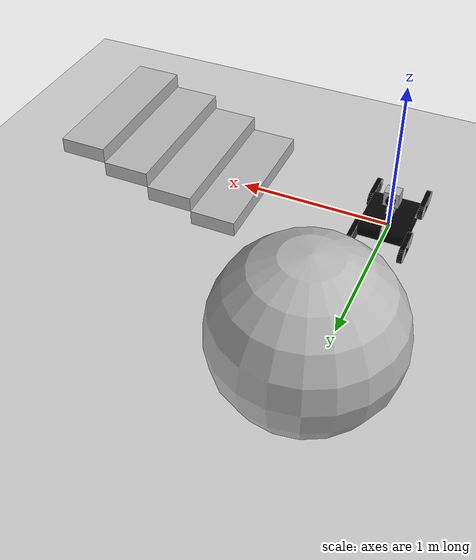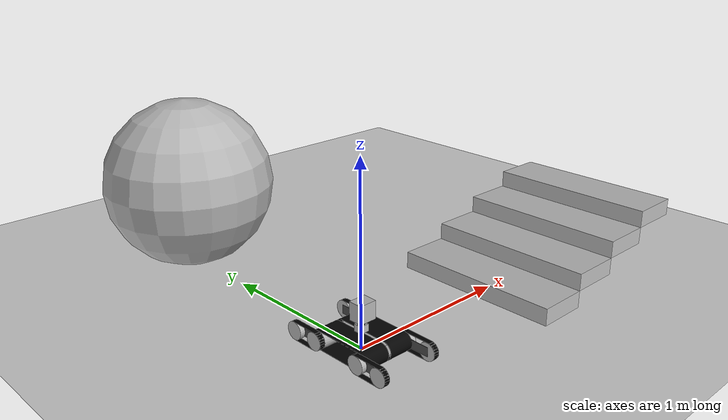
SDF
<?xml version="1.0"?>
<sdf version="1.6">
  <world name="default">
    <gui fullscreen='0'>
      <!-- KEYPUBLISHER SEE: https://github.com/osrf/car_demo/issues/25 -->
      <plugin name='keyboard' filename='libKeyboardGUIPlugin.so'/>
      <camera name='user_default'>
        <pose frame=''>0.602948 -0.001582 0.357965 -0 0.6 -3.141</pose>
        <view_controller>orbit</view_controller>
        <projection_type>perspective</projection_type>
      </camera>
    </gui>

    <include>
      <uri>model://ground_plane</uri>
    </include>

    <include>
      <uri>model://sun</uri>
    </include>

    <include>
      <uri>model://crawler_robot</uri>
      <name>crawler_robot</name>
      <pose>0 0 0 0 0 3.14</pose>
    </include>

    <model name="stairs">
      <pose>1 0 0 0 0 0</pose>
      <static>true</static>
      <link name="step1">
        <pose>0 0 0.05 0 0 0</pose>
        <collision name="collision">
          <geometry>
            <box> <size>0.3 1.0 0.1</size> </box>
          </geometry>
        </collision>
        <visual name="visual">
          <geometry>
            <box> <size>0.3 1.0 0.1</size> </box>
          </geometry>
        </visual>
      </link>
      <link name="step2">
        <pose>0.3 0 0.15 0 0 0</pose>
        <collision name="collision">
          <geometry>
            <box> <size>0.3 1.0 0.1</size> </box>
          </geometry>
        </collision>
        <visual name="visual">
          <geometry>
            <box> <size>0.3 1.0 0.1</size> </box>
          </geometry>
        </visual>
      </link>
      <link name="step3">
        <pose>0.6 0 0.25 0 0 0</pose>
        <collision name="collision">
          <geometry>
            <box> <size>0.3 1.0 0.1</size> </box>
          </geometry>
        </collision>
        <visual name="visual">
          <geometry>
            <box> <size>0.3 1.0 0.1</size> </box>
          </geometry>
        </visual>
      </link>
      <link name="step4">
        <pose>0.9 0 0.35 0 0 0</pose>
        <collision name="collision">
          <geometry>
            <box> <size>0.3 1.0 0.1</size> </box>
          </geometry>
        </collision>
        <visual name="visual">
          <geometry>
            <box> <size>0.3 1.0 0.1</size> </box>
          </geometry>
        </visual>
      </link>
    </model>

    <model name="sphere">
      <pose>0 1.5 0.5 0 0 0</pose>
      <link name="link">
        <collision name="collision">
          <geometry>
            <sphere>
              <radius>0.5</radius>
            </sphere>
          </geometry>
        </collision>
        <visual name="visual">
          <geometry>
            <sphere>
              <radius>0.5</radius>
            </sphere>
          </geometry>
          <material>
            <script>Gazebo/WoodPallet</script>
          </material>
        </visual>
        <audio_source>
          <uri>file://media/audio/cheer.wav</uri>
          <pitch>2.0</pitch>
          <gain>1.0</gain>
          <loop>false</loop>
          <contact>
            <collision>collision</collision>
          </contact>
        </audio_source>
      </link>
    </model>
  </world>
</sdf>

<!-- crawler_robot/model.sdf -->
<sdf version='1.5'>
  <model name="crawler_robot">
    <static>false</static>
    <self_collide>0</self_collide>
<!--__________________body_____________________-->
    <link name='base_link'>
      <pose>0 0 .05 0 0 0</pose>
      <inertial>
        <mass>20</mass>
        <inertia>
          <ixx>1.696e-01</ixx>
          <iyy>2.176e-02</iyy>
          <izz>1.7984e-01</izz>
        </inertia>
      </inertial>

      <collision name='collision'>
        <geometry>
          <box>
            <size>.1 .32 .06</size>
          </box>
        </geometry>
      </collision>

      <visual name='visual'>
        <geometry>
          <box>
            <size>.1 .32 .06</size>
          </box>
        </geometry>
      </visual>
<!--__________________crawler_____________________-->
      <visual name="crawler_visual_R">
        <pose>-0.08 -0.00075 0 0 0 1.570796327</pose>
        <geometry>
          <mesh>
            <uri>model://crawler_robot/dae/crawler.dae</uri>
          </mesh>
        </geometry>
      </visual>
      <visual name="crawler_visual_L">
        <pose>0.08 -0.00075 0 0 0 1.570796327</pose>
        <geometry>
          <mesh>
            <uri>model://crawler_robot/dae/crawler.dae</uri>
          </mesh>
        </geometry>
      </visual>
<!-- IMU Sensor -->
      <sensor name="imu_sensor" type="imu">
        <pose>0 0 0 0 0 0</pose>
        <always_on>1</always_on>
        <update_rate>100</update_rate>
        <imu>
        </imu>
      </sensor>
<!-- GPS sensor copied from gazebo-5.0.1/test/worlds/gps_test.world -->
      <sensor name="gps" type="gps">
        <pose>0 0 0 0 0 0</pose>
        <update_rate>10.0</update_rate>
        <always_on>true</always_on>
        <gps>
          <position_sensing>
            <horizontal>
              <noise type="gaussian_quantized">
                <mean>0</mean>
                <stddev>1</stddev>
                <bias_mean>3</bias_mean>
                <bias_stddev>1</bias_stddev>
                <precision>0.5</precision>
              </noise>
            </horizontal>
            <vertical>
              <noise type="gaussian_quantized">
                <mean>0</mean>
                <stddev>1</stddev>
                <bias_mean>3</bias_mean>
                <bias_stddev>1</bias_stddev>
                <precision>1.0</precision>
              </noise>
            </vertical>
          </position_sensing>
          <velocity_sensing>
            <horizontal>
              <noise type="gaussian_quantized">
                <mean>0</mean>
                <stddev>0.1</stddev>
                <bias_mean>0.1</bias_mean>
                <bias_stddev>0.1</bias_stddev>
                <precision>0.1</precision>
              </noise>
            </horizontal>
            <vertical>
              <noise type="gaussian_quantized">
                <mean>0</mean>
                <stddev>0.2</stddev>
                <bias_mean>0.2</bias_mean>
                <bias_stddev>0.2</bias_stddev>
                <precision>0.2</precision>
              </noise>
            </vertical>
          </velocity_sensing>
        </gps>
      </sensor>
    </link>

<!-- Camera (It's hight is 100mm) -->
    <include>
      <name>camera</name>
      <pose>0 0 0.22 0 0 -1.57</pose>
      <uri>model://camera_gazebo</uri>
    </include>

    <joint name="camera_joint" type="revolute">
      <parent>base_link</parent>
      <child>camera::camera_link</child>
      <pose>0 0 0 0 0 0</pose>
      <axis>
        <xyz>0 0 1</xyz>
        <limit>
          <lower>0</lower>
          <upper>0</upper>
        </limit>
      </axis>
    </joint>

<!-- Hokuyo (hight is 70mm) -->
    <include>
      <name>hokuyo</name>
      <pose>0 0 0.135 0 0 -1.57</pose>
      <uri>model://hokuyo_gazebo</uri>
    </include>

    <joint name="hokuyo_joint" type="revolute">
      <parent>base_link</parent>
      <child>hokuyo::hokuyo_link</child>
      <pose>0 0 0 0 0 0</pose>
      <axis>
        <xyz>0 0 1</xyz>
        <limit>
          <lower>0</lower>
          <upper>0</upper>
        </limit>
      </axis>
    </joint>

<!--__________________right_crawler___________________-->
    <link name="right_rear_wheel">
      <pose>-0.1 0.15 0.05 0 1.570796327 0</pose>
      <inertial>
        <mass>1.0</mass>
        <inertia>
          <ixx>1.3744467859e-03</ixx>
          <ixy>0</ixy>
          <ixz>0</ixz>
          <iyy>1.3744467859e-03</iyy>
          <iyz>0</iyz>
          <izz>11.780972451e-04</izz>
        </inertia>
      </inertial>
      <collision name="collision">
        <geometry>
          <cylinder>
            <radius>.05</radius>
            <length>.1</length>
          </cylinder>
        </geometry>
        <surface>
          <friction>
            <ode>
              <mu>.8</mu>
              <mu2>.8</mu2>
            </ode>
          </friction>
        </surface>
      </collision>
      <visual name="visual">
        <geometry>
          <cylinder>
            <radius>.05</radius>
            <length>.1</length>
          </cylinder>
        </geometry>
      </visual>
    </link>

    <link name="right_front_wheel">
    <pose>-0.1 -0.15 0.05 0 1.570796327 0</pose>
      <inertial>
        <mass>1.0</mass>
        <inertia>
          <ixx>1.3744467859e-03</ixx>
          <ixy>0</ixy>
          <ixz>0</ixz>
          <iyy>1.3744467859e-03</iyy>
          <iyz>0</iyz>
          <izz>11.780972451e-04</izz>
        </inertia>
      </inertial>
      <collision name="collision">
        <geometry>
          <cylinder>
            <radius>.05</radius>
            <length>.1</length>
          </cylinder>
        </geometry>
        <surface>
          <friction>
            <ode>
              <mu>.8</mu>
              <mu2>.8</mu2>
            </ode>
          </friction>
        </surface>
      </collision>
      <visual name="visual">
        <geometry>
          <cylinder>
            <radius>.05</radius>
            <length>.1</length>
          </cylinder>
        </geometry>
      </visual>
    </link>

    <link name="right_center_wheel_1">
      <pose>-0.1 0.05 0.05 0 1.570796327 0</pose>
      <inertial>
        <mass>1.0</mass>
        <inertia>
          <ixx>7.5267323992e-04</ixx>
          <ixy>0</ixy>
          <ixz>0</ixz>
          <iyy>7.5267323992e-04</iyy>
          <iyz>0</iyz>
          <izz>11.2900985988e-04</izz>
        </inertia>
      </inertial>
      <collision name="collision">
        <geometry>
          <cylinder>
            <radius>.05</radius>
            <length>.05</length>
          </cylinder>
        </geometry>
        <surface>
          <friction>
            <ode>
              <mu>.8</mu>
              <mu2>.8</mu2>
            </ode>
          </friction>
        </surface>
      </collision>
    </link>

    <link name="right_center_wheel_2">
      <pose>-0.1 -0.0 0.049 0 1.570796327 0</pose>
      <inertial>
        <mass>1.0</mass>
        <inertia>
          <ixx>7.5267323992e-04</ixx>
          <ixy>0</ixy>
          <ixz>0</ixz>
          <iyy>7.5267323992e-04</iyy>
          <iyz>0</iyz>
          <izz>11.2900985988e-04</izz>
        </inertia>
      </inertial>
      <collision name="collision">
        <geometry>
          <cylinder>
            <radius>.05</radius>
            <length>.05</length>
          </cylinder>
        </geometry>
        <surface>
          <friction>
            <ode>
              <mu>.8</mu>
              <mu2>.8</mu2>
            </ode>
          </friction>
        </surface>
      </collision>
    </link>

    <link name="right_center_wheel_3">
      <pose>-0.1 -0.05 0.05 0 1.570796327 0</pose>
      <inertial>
        <mass>1.0</mass>
        <inertia>
          <ixx>7.5267323992e-04</ixx>
          <ixy>0</ixy>
          <ixz>0</ixz>
          <iyy>7.5267323992e-04</iyy>
          <iyz>0</iyz>
          <izz>11.2900985988e-04</izz>
        </inertia>
      </inertial>
      <collision name="collision">
        <geometry>
          <cylinder>
            <radius>.05</radius>
            <length>.05</length>
          </cylinder>
        </geometry>
        <surface>
          <friction>
            <ode>
              <mu>.8</mu>
              <mu2>.8</mu2>
            </ode>
          </friction>
        </surface>
      </collision>
    </link>

    <link name="right_sub_wheel_2">
      <pose>-0.1 0.1 0.05 0 1.570796327 0</pose>
      <inertial>
        <mass>1.0</mass>
        <inertia>
          <ixx>1.3744467859e-03</ixx>
          <ixy>0</ixy>
          <ixz>0</ixz>
          <iyy>1.3744467859e-03</iyy>
          <iyz>0</iyz>
          <izz>11.780972451e-04</izz>
        </inertia>
      </inertial>
      <collision name="collision">
        <geometry>
          <cylinder>
            <radius>.05</radius>
            <length>.1</length>
          </cylinder>
        </geometry>
        <surface>
          <friction>
            <ode>
              <mu>.8</mu>
              <mu2>.8</mu2>
            </ode>
          </friction>
        </surface>
      </collision>
      <self_collide>0</self_collide>
    </link>

    <link name="right_sub_wheel_3">
      <pose>-0.1 -0.1 0.05 0 1.570796327 0</pose>
      <inertial>
        <mass>1.0</mass>
        <inertia>
          <ixx>1.3744467859e-03</ixx>
          <ixy>0</ixy>
          <ixz>0</ixz>
          <iyy>1.3744467859e-03</iyy>
          <iyz>0</iyz>
          <izz>11.780972451e-04</izz>
        </inertia>
      </inertial>
      <collision name="collision">
        <geometry>
          <cylinder>
            <radius>.05</radius>
            <length>.1</length>
          </cylinder>
        </geometry>
        <surface>
          <friction>
            <ode>
              <mu>.8</mu>
              <mu2>.8</mu2>
            </ode>
          </friction>
        </surface>
      </collision>
      <self_collide>0</self_collide>
    </link>
<!--__________________/right_crawler___________________-->

<!--__________________left_crawler___________________-->
    <link name="left_rear_wheel">
      <pose>0.1 0.15 0.05 0 1.570796327 0</pose>
      <inertial>
        <mass>1.0</mass>
        <inertia>
          <ixx>1.3744467859e-03</ixx>
          <ixy>0</ixy>
          <ixz>0</ixz>
          <iyy>1.3744467859e-03</iyy>
          <iyz>0</iyz>
          <izz>11.780972451e-04</izz>
        </inertia>
      </inertial>
      <collision name="collision">
        <geometry>
          <cylinder>
            <radius>.05</radius>
            <length>.1</length>
          </cylinder>
        </geometry>
        <surface>
          <friction>
            <ode>
              <mu>.8</mu>
              <mu2>.8</mu2>
            </ode>
          </friction>
        </surface>
      </collision>
      <visual name="visual">
        <geometry>
          <cylinder>
            <radius>.05</radius>
            <length>.1</length>
          </cylinder>
        </geometry>
      </visual>
    </link>

    <link name="left_front_wheel">
      <pose>0.1 -0.15 0.05 0 1.570796327 0</pose>
      <inertial>
        <mass>1.0</mass>
        <inertia>
          <ixx>1.3744467859e-03</ixx>
          <ixy>0</ixy>
          <ixz>0</ixz>
          <iyy>1.3744467859e-03</iyy>
          <iyz>0</iyz>
          <izz>11.780972451e-04</izz>
        </inertia>
      </inertial>
      <collision name="collision">
        <geometry>
          <cylinder>
            <radius>.05</radius>
            <length>.1</length>
          </cylinder>
        </geometry>
        <surface>
          <friction>
            <ode>
              <mu>.8</mu>
              <mu2>.8</mu2>
            </ode>
          </friction>
        </surface>
      </collision>
      <visual name="visual">
        <geometry>
          <cylinder>
            <radius>.05</radius>
            <length>.1</length>
          </cylinder>
        </geometry>
      </visual>
    </link>

    <link name="left_center_wheel_1">
      <pose>0.1 0.05 0.05 0 1.570796327 0</pose>
      <inertial>
        <mass>1.0</mass>
        <inertia>
          <ixx>7.5267323992e-04</ixx>
          <ixy>0</ixy>
          <ixz>0</ixz>
          <iyy>7.5267323992e-04</iyy>
          <iyz>0</iyz>
          <izz>11.2900985988e-04</izz>
        </inertia>
      </inertial>
      <collision name="collision">
        <geometry>
          <cylinder>
            <radius>.05</radius>
            <length>.05</length>
          </cylinder>
        </geometry>
        <surface>
          <friction>
            <ode>
              <mu>.8</mu>
              <mu2>.8</mu2>
            </ode>
          </friction>
        </surface>
      </collision>
    </link>

    <link name="left_center_wheel_2">
      <pose>0.1 -0.0 0.049 0 1.570796327 0</pose>
      <inertial>
        <mass>1.0</mass>
        <inertia>
          <ixx>7.5267323992e-04</ixx>
          <ixy>0</ixy>
          <ixz>0</ixz>
          <iyy>7.5267323992e-04</iyy>
          <iyz>0</iyz>
          <izz>11.2900985988e-04</izz>
        </inertia>
      </inertial>
      <collision name="collision">
        <geometry>
          <cylinder>
            <radius>.05</radius>
            <length>.05</length>
          </cylinder>
        </geometry>
        <surface>
          <friction>
            <ode>
              <mu>.8</mu>
              <mu2>.8</mu2>
            </ode>
          </friction>
        </surface>
      </collision>
    </link>

    <link name="left_center_wheel_3">
      <pose>0.1 -0.05 0.05 0 1.570796327 0</pose>
      <inertial>
        <mass>1.0</mass>
        <inertia>
          <ixx>7.5267323992e-04</ixx>
          <ixy>0</ixy>
          <ixz>0</ixz>
          <iyy>7.5267323992e-04</iyy>
          <iyz>0</iyz>
          <izz>11.2900985988e-04</izz>
        </inertia>
      </inertial>
      <collision name="collision">
        <geometry>
          <cylinder>
            <radius>.05</radius>
            <length>.05</length>
          </cylinder>
        </geometry>
        <surface>
          <friction>
            <ode>
              <mu>.8</mu>
              <mu2>.8</mu2>
            </ode>
          </friction>
        </surface>
      </collision>
    </link>

    <link name="left_sub_wheel_2">
      <pose>0.1 0.1 0.05 0 1.570796327 0</pose>
      <inertial>
        <mass>1.0</mass>
        <inertia>
          <ixx>1.3744467859e-03</ixx>
          <ixy>0</ixy>
          <ixz>0</ixz>
          <iyy>1.3744467859e-03</iyy>
          <iyz>0</iyz>
          <izz>11.780972451e-04</izz>
        </inertia>
      </inertial>
      <collision name="collision">
        <geometry>
          <cylinder>
            <radius>.05</radius>
            <length>.1</length>
          </cylinder>
        </geometry>
        <surface>
          <friction>
            <ode>
              <mu>.8</mu>
              <mu2>.8</mu2>
            </ode>
          </friction>
        </surface>
      </collision>
    </link>

    <link name="left_sub_wheel_3">
      <pose>0.1 -0.1 0.05 0 1.570796327 0</pose>
      <inertial>
        <mass>1.0</mass>
        <inertia>
          <ixx>1.3744467859e-03</ixx>
          <ixy>0</ixy>
          <ixz>0</ixz>
          <iyy>1.3744467859e-03</iyy>
          <iyz>0</iyz>
          <izz>11.780972451e-04</izz>
        </inertia>
      </inertial>
      <collision name="collision">
        <geometry>
          <cylinder>
            <radius>.05</radius>
            <length>.1</length>
          </cylinder>
        </geometry>
        <surface>
          <friction>
            <ode>
              <mu>.8</mu>
              <mu2>.8</mu2>
            </ode>
          </friction>
        </surface>
      </collision>
    </link>
<!--__________________/left_crawler___________________-->

<!--__________________right_rear_arm__________________-->

    <link name="right_rear_arm_link">
      <pose>-0.151 0.225 0.05 0 0 0</pose>
      <inertial>
        <pose>-0.015 0 0 1.57 0 1.57</pose>
        <mass>1.0</mass>
        <inertia>
          <ixx>6.8125e-4</ixx>
          <ixy>0</ixy>
          <ixz>0</ixz>
          <iyy>3.96253e-3</iyy>
          <iyz>0</iyz>
          <izz>4.53125e-3</izz>
        </inertia>
      </inertial>
      <visual name="visual">
        <geometry>
          <box>
            <size>.002 .16 .05</size>
          </box>
        </geometry>
        <material>
          <ambient>0.7 0.7 0.7 1</ambient>
          <diffuse>0.3 0.3 0.3 1</diffuse>
          <specular>0.1 0.1 0.1 1</specular>
          <emissive>0 0 0 0</emissive>
        </material>
      </visual>
      <visual name="crawler_visual">
        <pose>-0.015 0 -0.05 0 0 1.57</pose>
        <geometry>
          <mesh>
            <uri>model://crawler_robot/dae/arm_crawler_2.dae</uri>
          </mesh>
        </geometry>
      </visual>
    </link>

    <link name="right_rear_arm_wheel_1">
      <pose>-0.166 0.15 0.05 0 1.570796327 0</pose>
      <inertial>
        <mass>1.0</mass>
        <inertia>
          <ixx>6.2674773439e-04</ixx>
          <ixy>0</ixy>
          <ixz>0</ixz>
          <iyy>6.2674773439e-04</iyy>
          <iyz>0</iyz>
          <izz>11.1919238284e-04</izz>
        </inertia>
      </inertial>
      <collision name="collision">
        <geometry>
          <cylinder>
            <radius>.05</radius>
            <length>.03</length>
          </cylinder>
        </geometry>
        <surface>
          <friction>
            <ode>
              <mu>.8</mu>
              <mu2>.8</mu2>
            </ode>
          </friction>
        </surface>
      </collision>
      <visual name="visual">
        <geometry>
          <cylinder>
            <radius>.05</radius>
            <length>.03</length>
          </cylinder>
        </geometry>
      </visual>
      <self_collide>0</self_collide>
    </link>

    <link name="right_rear_arm_wheel_2">
      <pose>-0.166 0.3 0.05 0 1.570796327 0</pose>
      <inertial>
        <mass>1.0</mass>
        <inertia>
          <ixx>6.2674773439e-04</ixx>
          <ixy>0</ixy>
          <ixz>0</ixz>
          <iyy>6.2674773439e-04</iyy>
          <iyz>0</iyz>
          <izz>11.1919238284e-04</izz>
        </inertia>
      </inertial>
      <collision name="collision">
        <geometry>
          <cylinder>
            <radius>.05</radius>
            <length>.03</length>
          </cylinder>
        </geometry>
        <surface>
          <friction>
            <ode>
              <mu>.8</mu>
              <mu2>.8</mu2>
            </ode>
          </friction>
        </surface>
      </collision>
      <visual name="visual">
        <geometry>
          <cylinder>
            <radius>.05</radius>
            <length>.03</length>
          </cylinder>
        </geometry>
      </visual>
      <self_collide>0</self_collide>
    </link>

    <link name="right_rear_arm_wheel_3">
      <pose>-0.166 0.225 0.05 0 1.570796327 0</pose>
      <inertial>
        <mass>1.0</mass>
        <inertia>
          <ixx>6.2674773439e-04</ixx>
          <ixy>0</ixy>
          <ixz>0</ixz>
          <iyy>6.2674773439e-04</iyy>
          <iyz>0</iyz>
          <izz>11.1919238284e-04</izz>
        </inertia>
      </inertial>
      <collision name="collision">
        <geometry>
          <cylinder>
            <radius>.05</radius>
            <length>.03</length>
          </cylinder>
        </geometry>
        <surface>
          <friction>
            <ode>
              <mu>.8</mu>
              <mu2>.8</mu2>
            </ode>
          </friction>
        </surface>
      </collision>
      <self_collide>0</self_collide>
    </link>
<!--__________________/right_rear_arm__________________-->

<!--__________________left_rear_arm__________________-->
    <link name="left_rear_arm_link">
      <pose>0.151 0.225 0.05 0 0 0</pose>
      <inertial>
        <pose>0.015 0 0 1.57 0 1.57</pose>
        <mass>1.0</mass>
        <inertia>
          <ixx>6.8125e-4</ixx>
          <ixy>0</ixy>
          <ixz>0</ixz>
          <iyy>3.96253e-3</iyy>
          <iyz>0</iyz>
          <izz>4.53125e-3</izz>
        </inertia>
      </inertial>
      <visual name="visual">
        <geometry>
          <box>
            <size>.002 .16 .05</size>
          </box>
        </geometry>
        <material>
          <ambient>0.7 0.7 0.7 1</ambient>
          <diffuse>0.3 0.3 0.3 1</diffuse>
          <specular>0.1 0.1 0.1 1</specular>
          <emissive>0 0 0 0</emissive>
        </material>
      </visual>
      <visual name="crawler_visual">
        <pose>0.015 0 -0.05 0 0 1.57</pose>
        <geometry>
          <mesh>
            <uri>model://crawler_robot/dae/arm_crawler_2.dae</uri>
          </mesh>
        </geometry>
      </visual>
    </link>

    <link name="left_rear_arm_wheel_1">
      <pose>0.166 0.15 0.05 0 1.570796327 0</pose>
      <inertial>
        <mass>1.0</mass>
        <inertia>
          <ixx>6.2674773439e-04</ixx>
          <ixy>0</ixy>
          <ixz>0</ixz>
          <iyy>6.2674773439e-04</iyy>
          <iyz>0</iyz>
          <izz>11.1919238284e-04</izz>
        </inertia>
      </inertial>
      <collision name="collision">
        <geometry>
          <cylinder>
            <radius>.05</radius>
            <length>.03</length>
          </cylinder>
        </geometry>
        <surface>
          <friction>
            <ode>
              <mu>.8</mu>
              <mu2>.8</mu2>
            </ode>
          </friction>
        </surface>
      </collision>
      <visual name="visual">
        <geometry>
          <cylinder>
            <radius>.05</radius>
            <length>.03</length>
          </cylinder>
        </geometry>
      </visual>
      <self_collide>0</self_collide>
    </link>

    <link name="left_rear_arm_wheel_2">
      <pose>0.166 0.3 0.05 0 1.570796327 0</pose>
      <inertial>
        <mass>1.0</mass>
        <inertia>
          <ixx>6.2674773439e-04</ixx>
          <ixy>0</ixy>
          <ixz>0</ixz>
          <iyy>6.2674773439e-04</iyy>
          <iyz>0</iyz>
          <izz>11.1919238284e-04</izz>
        </inertia>
      </inertial>
      <collision name="collision">
        <geometry>
          <cylinder>
            <radius>.05</radius>
            <length>.03</length>
          </cylinder>
        </geometry>
        <surface>
          <friction>
            <ode>
              <mu>.8</mu>
              <mu2>.8</mu2>
            </ode>
          </friction>
        </surface>
      </collision>
      <visual name="visual">
        <geometry>
          <cylinder>
            <radius>.05</radius>
            <length>.03</length>
          </cylinder>
        </geometry>
      </visual>
      <self_collide>0</self_collide>
    </link>

    <link name="left_rear_arm_wheel_3">
      <pose>0.166 0.225 0.05 0 1.570796327 0</pose>
      <inertial>
        <mass>1.0</mass>
        <inertia>
          <ixx>6.2674773439e-04</ixx>
          <ixy>0</ixy>
          <ixz>0</ixz>
          <iyy>6.2674773439e-04</iyy>
          <iyz>0</iyz>
          <izz>11.1919238284e-04</izz>
        </inertia>
      </inertial>
      <collision name="collision">
        <geometry>
          <cylinder>
            <radius>.05</radius>
            <length>.03</length>
          </cylinder>
        </geometry>
        <surface>
          <friction>
            <ode>
              <mu>.8</mu>
              <mu2>.8</mu2>
            </ode>
          </friction>
        </surface>
      </collision>
      <self_collide>0</self_collide>
    </link>
<!--__________________/left_rear_arm__________________-->

<!--__________________right_front_arm__________________-->
    <link name="right_front_arm_link">
      <pose>-0.151 -0.225 0.05 0 0 0</pose>
      <inertial>
        <pose>-0.015 0 0 1.57 0 1.57</pose>
        <mass>1.0</mass>
        <inertia>
          <ixx>6.8125e-4</ixx>
          <ixy>0</ixy>
          <ixz>0</ixz>
          <iyy>3.96253e-3</iyy>
          <iyz>0</iyz>
          <izz>4.53125e-3</izz>
        </inertia>
      </inertial>
      <visual name="visual">
        <geometry>
          <box>
            <size>.002 .16 .05</size>
          </box>
        </geometry>
        <material>
          <ambient>0.7 0.7 0.7 1</ambient>
          <diffuse>0.3 0.3 0.3 1</diffuse>
          <specular>0.1 0.1 0.1 1</specular>
          <emissive>0 0 0 0</emissive>
        </material>
      </visual>
      <visual name="crawler_visual">
        <pose>-0.015 0 -0.05 0 0 1.57</pose>
        <geometry>
          <mesh>
            <uri>model://crawler_robot/dae/arm_crawler_2.dae</uri>
          </mesh>
        </geometry>
      </visual>
    </link>

    <link name="right_front_arm_wheel_1">
      <pose>-0.166 -0.15 0.05 0 1.570796327 0</pose>
      <inertial>
        <mass>1.0</mass>
        <inertia>
          <ixx>6.2674773439e-04</ixx>
          <ixy>0</ixy>
          <ixz>0</ixz>
          <iyy>6.2674773439e-04</iyy>
          <iyz>0</iyz>
          <izz>11.1919238284e-04</izz>
        </inertia>
      </inertial>
      <collision name="collision">
        <geometry>
          <cylinder>
            <radius>.05</radius>
            <length>.03</length>
          </cylinder>
        </geometry>
        <surface>
          <friction>
            <ode>
              <mu>.8</mu>
              <mu2>.8</mu2>
            </ode>
          </friction>
        </surface>
      </collision>
      <visual name="visual">
        <geometry>
          <cylinder>
            <radius>.05</radius>
            <length>.03</length>
          </cylinder>
        </geometry>
      </visual>
      <self_collide>0</self_collide>
    </link>

    <link name="right_front_arm_wheel_2">
      <pose>-0.166 -0.3 0.05 0 1.570796327 0</pose>
      <inertial>
        <mass>1.0</mass>
        <inertia>
          <ixx>6.2674773439e-04</ixx>
          <ixy>0</ixy>
          <ixz>0</ixz>
          <iyy>6.2674773439e-04</iyy>
          <iyz>0</iyz>
          <izz>11.1919238284e-04</izz>
        </inertia>
      </inertial>
      <collision name="collision">
        <geometry>
          <cylinder>
            <radius>.05</radius>
            <length>.03</length>
          </cylinder>
        </geometry>
        <surface>
          <friction>
            <ode>
              <mu>.8</mu>
              <mu2>.8</mu2>
            </ode>
          </friction>
        </surface>
      </collision>
      <visual name="visual">
        <geometry>
          <cylinder>
            <radius>.05</radius>
            <length>.03</length>
          </cylinder>
        </geometry>
      </visual>
      <self_collide>0</self_collide>
    </link>

    <link name="right_front_arm_wheel_3">
      <pose>-0.166 -0.225 0.05 0 1.570796327 0</pose>
      <inertial>
        <mass>1.0</mass>
        <inertia>
          <ixx>6.2674773439e-04</ixx>
          <ixy>0</ixy>
          <ixz>0</ixz>
          <iyy>6.2674773439e-04</iyy>
          <iyz>0</iyz>
          <izz>11.1919238284e-04</izz>
        </inertia>
      </inertial>
      <collision name="collision">
        <geometry>
          <cylinder>
            <radius>.05</radius>
            <length>.03</length>
          </cylinder>
        </geometry>
        <surface>
          <friction>
            <ode>
              <mu>.8</mu>
              <mu2>.8</mu2>
            </ode>
          </friction>
        </surface>
      </collision>
      <self_collide>0</self_collide>
    </link>
<!--__________________/right_front_arm__________________-->

<!--__________________left_front_arm__________________-->
    <link name="left_front_arm_link">
      <pose>0.151 -0.225 0.05 0 0 0</pose>
      <inertial>
        <pose>0.015 0 0 1.57 0 1.57</pose>
        <mass>1.0</mass>
        <inertia>
          <ixx>6.8125e-4</ixx>
          <ixy>0</ixy>
          <ixz>0</ixz>
          <iyy>3.96253e-3</iyy>
          <iyz>0</iyz>
          <izz>4.53125e-3</izz>
        </inertia>
      </inertial>
      <visual name="visual">
        <geometry>
          <box>
            <size>.002 .16 .05</size>
          </box>
        </geometry>
        <material>
          <ambient>0.7 0.7 0.7 1</ambient>
          <diffuse>0.3 0.3 0.3 1</diffuse>
          <specular>0.1 0.1 0.1 1</specular>
          <emissive>0 0 0 0</emissive>
        </material>
      </visual>
      <visual name="crawler_visual">
        <pose>0.015 0 -0.05 0 0 1.57</pose>
        <geometry>
          <mesh>
            <uri>model://crawler_robot/dae/arm_crawler_2.dae</uri>
          </mesh>
        </geometry>
      </visual>
    </link>

    <link name="left_front_arm_wheel_1">
      <pose>0.166 -0.15 0.05 0 1.570796327 0</pose>
      <inertial>
        <mass>1.0</mass>
        <inertia>
          <ixx>6.2674773439e-04</ixx>
          <ixy>0</ixy>
          <ixz>0</ixz>
          <iyy>6.2674773439e-04</iyy>
          <iyz>0</iyz>
          <izz>11.1919238284e-04</izz>
        </inertia>
      </inertial>
      <collision name="collision">
        <geometry>
          <cylinder>
            <radius>.05</radius>
            <length>.03</length>
          </cylinder>
        </geometry>
        <surface>
          <friction>
            <ode>
              <mu>.8</mu>
              <mu2>.8</mu2>
            </ode>
          </friction>
        </surface>
      </collision>
      <visual name="visual">
        <geometry>
          <cylinder>
            <radius>.05</radius>
            <length>.03</length>
          </cylinder>
        </geometry>
      </visual>
      <self_collide>0</self_collide>
    </link>

    <link name="left_front_arm_wheel_2">
      <pose>0.166 -0.3 0.05 0 1.570796327 0</pose>
      <inertial>
        <mass>1.0</mass>
        <inertia>
          <ixx>6.2674773439e-04</ixx>
          <ixy>0</ixy>
          <ixz>0</ixz>
          <iyy>6.2674773439e-04</iyy>
          <iyz>0</iyz>
          <izz>11.1919238284e-04</izz>
        </inertia>
      </inertial>
      <collision name="collision">
        <geometry>
          <cylinder>
            <radius>.05</radius>
            <length>.03</length>
          </cylinder>
        </geometry>
        <surface>
          <friction>
            <ode>
              <mu>.8</mu>
              <mu2>.8</mu2>
            </ode>
          </friction>
        </surface>
      </collision>
      <visual name="visual">
        <geometry>
          <cylinder>
            <radius>.05</radius>
            <length>.03</length>
          </cylinder>
        </geometry>
      </visual>
      <self_collide>0</self_collide>
    </link>

    <link name="left_front_arm_wheel_3">
      <pose>0.166 -0.225 0.05 0 1.570796327 0</pose>
      <inertial>
        <mass>1.0</mass>
        <inertia>
          <ixx>6.2674773439e-04</ixx>
          <ixy>0</ixy>
          <ixz>0</ixz>
          <iyy>6.2674773439e-04</iyy>
          <iyz>0</iyz>
          <izz>11.1919238284e-04</izz>
        </inertia>
      </inertial>
      <collision name="collision">
        <geometry>
          <cylinder>
            <radius>.05</radius>
            <length>.03</length>
          </cylinder>
        </geometry>
        <surface>
          <friction>
            <ode>
              <mu>.8</mu>
              <mu2>.8</mu2>
            </ode>
          </friction>
        </surface>
      </collision>
      <self_collide>0</self_collide>
    </link>
<!--__________________/left_front_arm__________________-->

<!--__________________joint___________________-->
    <joint type="revolute" name="right_rear">
      <pose>0 0 0.05 0 0 0</pose>
      <child>right_rear_wheel</child>
      <parent>base_link</parent>
      <axis>
        <xyz>0 0 1</xyz>
      </axis>
    </joint>

    <joint type="revolute" name="right_front">
      <pose>0 0 0.05 0 0 0</pose>
      <child>right_front_wheel</child>
      <parent>base_link</parent>
      <axis>
        <xyz>0 0 1</xyz>
      </axis>
    </joint>

    <joint type="revolute" name="right_center1">
      <pose>0 0 0.05 0 0 0</pose>
      <child>right_center_wheel_1</child>
      <parent>base_link</parent>
      <axis>
        <xyz>0 0 1</xyz>
      </axis>
    </joint>

    <joint type="revolute" name="right_center2">
      <pose>0 0 0.05 0 0 0</pose>
      <child>right_center_wheel_2</child>
      <parent>base_link</parent>
      <axis>
        <xyz>0 0 1</xyz>
      </axis>
    </joint>

    <joint type="revolute" name="right_center3">
      <pose>0 0 0.05 0 0 0</pose>
      <child>right_center_wheel_3</child>
      <parent>base_link</parent>
      <axis>
        <xyz>0 0 1</xyz>
      </axis>
    </joint>

    <joint type="revolute" name="right_sub2">
        <pose>0 0 -0.05 0 0 0</pose>
        <child>right_sub_wheel_2</child>
        <parent>base_link</parent>
        <axis>
          <xyz>0 0 1</xyz>
        </axis>
    </joint>

    <joint type="revolute" name="right_sub3">
      <pose>0 0 -0.05 0 0 0</pose>
      <child>right_sub_wheel_3</child>
      <parent>base_link</parent>
      <axis>
        <xyz>0 0 1</xyz>
      </axis>
    </joint>

    <joint type="revolute" name="left_rear">
      <pose>0 0 -0.05 0 0 0</pose>
      <child>left_rear_wheel</child>
      <parent>base_link</parent>
      <axis>
        <xyz>0 0 1</xyz>
      </axis>
    </joint>

    <joint type="revolute" name="left_front">
      <pose>0 0 -0.05 0 0 0</pose>
      <child>left_front_wheel</child>
      <parent>base_link</parent>
      <axis>
        <xyz>0 0 1</xyz>
      </axis>
    </joint>

    <joint type="revolute" name="left_center1">
      <pose>0 0 -0.05 0 0 0</pose>
      <child>left_center_wheel_1</child>
      <parent>base_link</parent>
      <axis>
        <xyz>0 0 1</xyz>
      </axis>
    </joint>

    <joint type="revolute" name="left_center2">
      <pose>0 0 -0.05 0 0 0</pose>
      <child>left_center_wheel_2</child>
      <parent>base_link</parent>
      <axis>
        <xyz>0 0 1</xyz>
      </axis>
    </joint>

    <joint type="revolute" name="left_center3">
      <pose>0 0 -0.05 0 0 0</pose>
      <child>left_center_wheel_3</child>
      <parent>base_link</parent>
      <axis>
        <xyz>0 0 1</xyz>
      </axis>
    </joint>

    <joint type="revolute" name="left_sub2">
      <pose>0 0 -0.05 0 0 0</pose>
      <child>left_sub_wheel_2</child>
      <parent>base_link</parent>
      <axis>
        <xyz>0 0 1</xyz>
      </axis>
    </joint>

    <joint type="revolute" name="left_sub3">
      <pose>0 0 -0.05 0 0 0</pose>
      <child>left_sub_wheel_3</child>
      <parent>base_link</parent>
      <axis>
        <xyz>0 0 1</xyz>
      </axis>
    </joint>

    <joint type="revolute" name="left_rear_arm_joint">
      <pose>0 -0.075 0.001 0 0 0</pose>
      <child>left_rear_arm_link</child>
      <parent>base_link</parent>
      <axis>
        <xyz>1 0 0</xyz>
        <dynamics>
          <damping>.5</damping>
        </dynamics>
        <limit>
          <velocity>1</velocity>
        </limit>
      </axis>
    </joint>

    <joint type="revolute" name="right_rear_arm_joint">
      <pose>0 -0.075 -0.001 0 0 0</pose>
      <child>right_rear_arm_link</child>
      <parent>base_link</parent>
      <axis>
        <xyz>1 0 0</xyz>
        <dynamics>
          <damping>.5</damping>
        </dynamics>
        <limit>
          <velocity>1</velocity>
        </limit>
      </axis>
    </joint>

    <joint type="revolute" name="left_front_arm_joint">
      <pose>0 0.075 0.001 0 0 0</pose>
      <child>left_front_arm_link</child>
      <parent>base_link</parent>
      <axis>
        <xyz>1 0 0</xyz>
        <dynamics>
          <damping>.5</damping>
        </dynamics>
        <limit>
          <velocity>1</velocity>
        </limit>
      </axis>
    </joint>

    <joint type="revolute" name="right_front_arm_joint">
      <pose>0 0.075 -0.001 0 0 0</pose>
      <child>right_front_arm_link</child>
      <parent>base_link</parent>
      <axis>
        <xyz>1 0 0</xyz>
        <dynamics>
          <damping>.5</damping>
        </dynamics>
        <limit>
          <velocity>1</velocity>
        </limit>
      </axis>
    </joint>

    <joint type="revolute" name="right_rear_arm_wheel_1">
      <pose>0 0 0.015 0 0 0</pose>
      <child>right_rear_arm_wheel_1</child>
      <parent>right_rear_arm_link</parent>
      <axis>
        <xyz>0 0 1</xyz>
      </axis>
    </joint>

    <joint type="revolute" name="right_rear_arm_wheel_2">
      <pose>0 0 0.015 0 0 0</pose>
      <child>right_rear_arm_wheel_2</child>
      <parent>right_rear_arm_link</parent>
      <axis>
        <xyz>0 0 1</xyz>
      </axis>
    </joint>

    <joint type="revolute" name="right_rear_arm_wheel_3">
      <pose>0 0 0.015 0 0 0</pose>
      <child>right_rear_arm_wheel_3</child>
      <parent>right_rear_arm_link</parent>
      <axis>
        <xyz>0 0 1</xyz>
      </axis>
    </joint>

    <joint type="revolute" name="right_front_arm_wheel_1">
      <pose>0 0 0.015 0 0 0</pose>
      <child>right_front_arm_wheel_1</child>
      <parent>right_front_arm_link</parent>
      <axis>
        <xyz>0 0 1</xyz>
      </axis>
    </joint>

    <joint type="revolute" name="right_front_arm_wheel_2">
      <pose>0 0 0.015 0 0 0</pose>
      <child>right_front_arm_wheel_2</child>
      <parent>right_front_arm_link</parent>
      <axis>
        <xyz>0 0 1</xyz>
      </axis>
    </joint>

    <joint type="revolute" name="right_front_arm_wheel_3">
      <pose>0 0 0.015 0 0 0</pose>
      <child>right_front_arm_wheel_3</child>
      <parent>right_front_arm_link</parent>
      <axis>
        <xyz>0 0 1</xyz>
      </axis>
    </joint>

    <joint type="revolute" name="left_rear_arm_wheel_1">
      <pose>0 0 -0.015 0 0 0</pose>
      <child>left_rear_arm_wheel_1</child>
      <parent>left_rear_arm_link</parent>
      <axis>
        <xyz>0 0 1</xyz>
      </axis>
    </joint>

    <joint type="revolute" name="left_rear_arm_wheel_2">
      <pose>0 0 -0.015 0 0 0</pose>
      <child>left_rear_arm_wheel_2</child>
      <parent>left_rear_arm_link</parent>
      <axis>
        <xyz>0 0 1</xyz>
      </axis>
    </joint>

    <joint type="revolute" name="left_rear_arm_wheel_3">
      <pose>0 0 -0.015 0 0 0</pose>
      <child>left_rear_arm_wheel_3</child>
      <parent>left_rear_arm_link</parent>
      <axis>
        <xyz>0 0 1</xyz>
      </axis>
    </joint>

    <joint type="revolute" name="left_front_arm_wheel_1">
      <pose>0 0 -0.015 0 0 0</pose>
      <child>left_front_arm_wheel_1</child>
      <parent>left_front_arm_link</parent>
      <axis>
        <xyz>0 0 1</xyz>
      </axis>
    </joint>

    <joint type="revolute" name="left_front_arm_wheel_2">
      <pose>0 0 -0.015 0 0 0</pose>
      <child>left_front_arm_wheel_2</child>
      <parent>left_front_arm_link</parent>
      <axis>
        <xyz>0 0 1</xyz>
      </axis>
    </joint>

    <joint type="revolute" name="left_front_arm_wheel_3">
      <pose>0 0 -0.015 0 0 0</pose>
      <child>left_front_arm_wheel_3</child>
      <parent>left_front_arm_link</parent>
      <axis>
        <xyz>0 0 1</xyz>
      </axis>
    </joint>

<!--__________________/joint___________________-->

    <plugin name="crawler_flipper" filename="libcrawler_flipper.so">
      <right_front_arm>right_front_arm_joint</right_front_arm>
      <right_rear_arm>right_rear_arm_joint</right_rear_arm>
      <left_front_arm>left_front_arm_joint</left_front_arm>
      <left_rear_arm>left_rear_arm_joint</left_rear_arm>
      <right_front>right_front</right_front>
      <right_rear>right_rear</right_rear>
      <left_front>left_front</left_front>
      <left_rear>left_rear</left_rear>
      <right_center1>right_center1</right_center1>
      <right_center2>right_center2</right_center2>
      <right_center3>right_center3</right_center3>
      <left_center1>left_center1</left_center1>
      <left_center2>left_center2</left_center2>
      <left_center3>left_center3</left_center3>
      <right_front_arm_wheel_1>right_front_arm_wheel_1</right_front_arm_wheel_1>
      <right_front_arm_wheel_2>right_front_arm_wheel_2</right_front_arm_wheel_2>
      <right_front_arm_wheel_3>right_front_arm_wheel_3</right_front_arm_wheel_3>
      <left_front_arm_wheel_1>left_front_arm_wheel_1</left_front_arm_wheel_1>
      <left_front_arm_wheel_2>left_front_arm_wheel_2</left_front_arm_wheel_2>
      <left_front_arm_wheel_3>left_front_arm_wheel_3</left_front_arm_wheel_3>
      <right_rear_arm_wheel_1>right_rear_arm_wheel_1</right_rear_arm_wheel_1>
      <right_rear_arm_wheel_2>right_rear_arm_wheel_2</right_rear_arm_wheel_2>
      <right_rear_arm_wheel_3>right_rear_arm_wheel_3</right_rear_arm_wheel_3>
      <left_rear_arm_wheel_1>left_rear_arm_wheel_1</left_rear_arm_wheel_1>
      <left_rear_arm_wheel_2>left_rear_arm_wheel_2</left_rear_arm_wheel_2>
      <left_rear_arm_wheel_3>left_rear_arm_wheel_3</left_rear_arm_wheel_3>
      <right_sub2>right_sub2</right_sub2>
      <right_sub3>right_sub3</right_sub3>
      <left_sub2>left_sub2</left_sub2>
      <left_sub3>left_sub3</left_sub3>
      <gain>0.1</gain>
    </plugin>

  </model>
</sdf>

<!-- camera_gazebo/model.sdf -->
<sdf version="1.5">
  <model name="camera_gazebo">
    <!-- The origin is the center of the bottom -->
    <pose>0 0 0.05 0 0 0</pose>
    <link name="camera_link">
      <audio_sink /> <!-- Camera and microphone should be combined -->
      <pose>0 0 0 0 0 0</pose>
      <inertial>
        <mass>0.1</mass>
        <inertia>
          <ixx>0.000166667</ixx>
          <iyy>0.000166667</iyy>
          <izz>0.000166667</izz>
        </inertia>
      </inertial>
      <collision name="collision-box">
        <pose>-0.01 0 0 0 0 0</pose>
        <geometry>
          <box>
            <size>0.08 0.1 0.1</size>
          </box>
        </geometry>
      </collision>
      <collision name="collision-lens">
        <pose>0.04 0 0 0 1.57 0</pose>
        <geometry>
          <cylinder>
            <radius>0.03</radius>
            <length>0.02</length>
          </cylinder>
        </geometry>
      </collision>
      <visual name="visual-box">
        <pose>-0.01 0 0 0 0 0</pose>
        <geometry>
          <box>
            <size>0.08 0.1 0.1</size>
          </box>
        </geometry>
        <material>
          <ambient>0.3 0.3 0.3 1</ambient>
          <diffuse>0.7 0.7 0.7 1</diffuse>
          <specular>0.1 0.1 0.1 1</specular>
          <emissive>0 0 0 0</emissive>
        </material>
      </visual>
      <visual name="visual-lens">
        <pose>0.04 0 0 0 1.57 0</pose>
        <geometry>
          <cylinder>
            <radius>0.03</radius>
            <length>0.02</length>
          </cylinder>
        </geometry>
        <material>
          <ambient>0 0 0 1</ambient>
          <diffuse>0 0 0 1</diffuse>
          <specular>0.1 0.1 0.1 1</specular>
          <emissive>0 0 0 0</emissive>
        </material>
      </visual>
      <sensor type="camera" name="camera">
        <update_rate>20</update_rate>
        <visualize>false</visualize>
        <camera name="camera">
          <horizontal_fov>1.047</horizontal_fov>
          <image>
            <width>320</width>
            <height>240</height>
            <format>R8G8B8</format>
          </image>
          <clip>
            <near>0.1</near>
            <far>100</far>
          </clip>
          <!-- Noise is sampled independently per pixel on each frame.
               That pixel's noise value is added to each of its color
               channels, which at that point lie in the range [0,1]. -->
          <noise>
            <type>gaussian</type>
            <mean>0.0</mean>
            <stddev>0.007</stddev>
          </noise>
        </camera>
      </sensor>
    </link>
  </model>
</sdf>

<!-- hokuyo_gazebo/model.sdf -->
<sdf version="1.5">
  <model name="hokuyo_gazebo">
    <!-- The origin is the center of the bottom -->
    <pose>0 0 0.035 0 0 0</pose>
    <link name="hokuyo_link">
      <inertial>
        <mass>0.1</mass>
        <inertia>
          <ixx>0.6205208333e-04</ixx>
          <iyy>0.6205208333e-04</iyy>
          <izz>4.1927083333e-05</izz>
        </inertia>
      </inertial>
      <visual name="visual-base">
        <pose>0 0 -0.0145 0 0 0</pose>
        <geometry>
          <box>
            <size>0.05 0.05 0.041</size>
          </box>
        </geometry>
        <material>
          <ambient>0.3 0.3 0.3 1</ambient>
          <diffuse>0.7 0.7 0.7 1</diffuse>
          <specular>0.1 0.1 0.1 1</specular>
          <emissive>0 0 0 0</emissive>
        </material>
      </visual>
      <visual name="visual-top">
        <pose>0 0 0.0205 0 0 0</pose>
        <geometry>
          <cylinder>
            <radius>0.021</radius>
            <length>0.029</length>
          </cylinder>
        </geometry>
        <material>
          <ambient>0 0 0 1</ambient>
          <diffuse>0 0 0 1</diffuse>
          <specular>0.1 0.1 0.1 1</specular>
          <emissive>0 0 0 0</emissive>
        </material>
      </visual>
      <collision name="collision-base">
        <pose>0 0 -0.0145 0 0 0</pose>
        <geometry>
          <box>
            <size>0.05 0.05 0.041</size>
          </box>
        </geometry>
      </collision>
      <collision name="collision-top">
        <pose>0 0 0.0205 0 0 0</pose>
        <geometry>
          <cylinder>
            <radius>0.021</radius>
            <length>0.029</length>
          </cylinder>
        </geometry>
      </collision>
      <sensor type="ray" name="lms200">
        <always_on>true</always_on>
        <update_rate>30</update_rate>
        <pose>0 0 0.01815 0 0 0</pose> <!-- From URG04LX Spec -->
        <visualize>false</visualize>
        <ray>
          <scan>
            <horizontal>
		          <samples>1040</samples>
		          <resolution>1</resolution>
		          <min_angle>-2.268928</min_angle> <!-- 90deg: -1.570796 -->
		          <max_angle>2.268928</max_angle>  <!-- 90deg: 1.570796  -->
            </horizontal>
          </scan>
          <range>
            <min>0.15</min>
            <max>5.6</max> <!-- From URG04LX Spec -->
            <resolution>0.001</resolution> <!-- From URG04LX Spec -->
          </range>
        </ray>
      </sensor>
    </link>
  </model>
</sdf>
